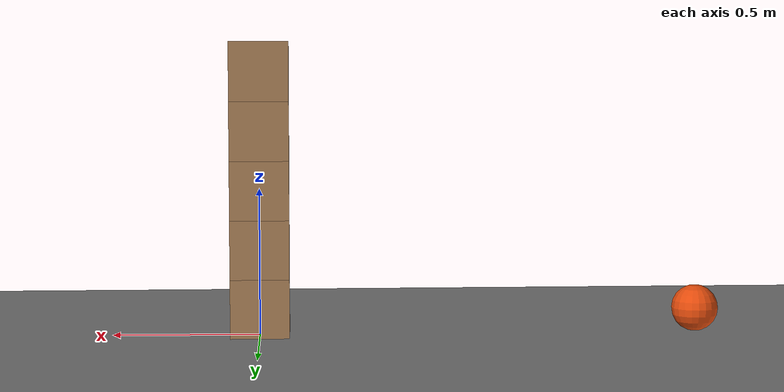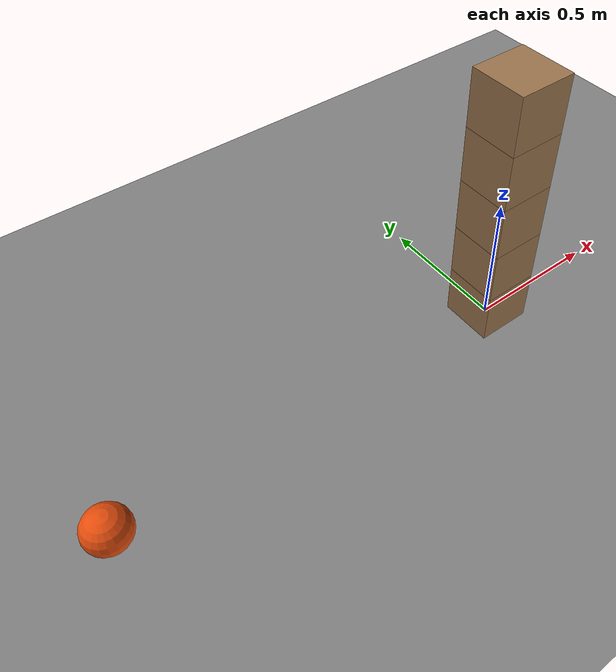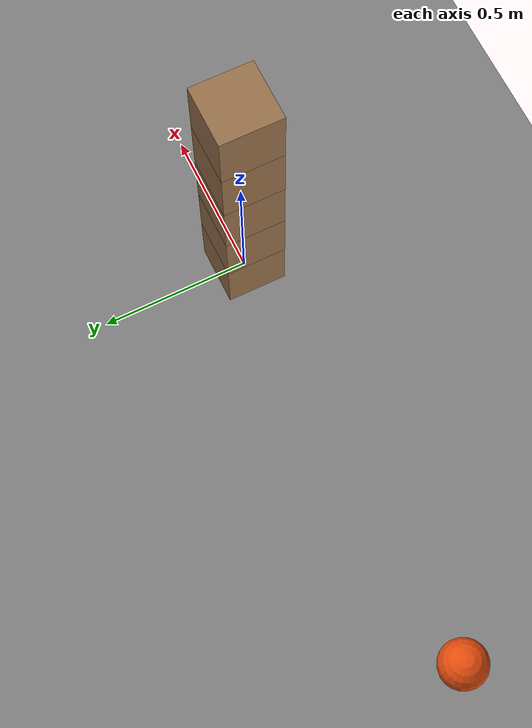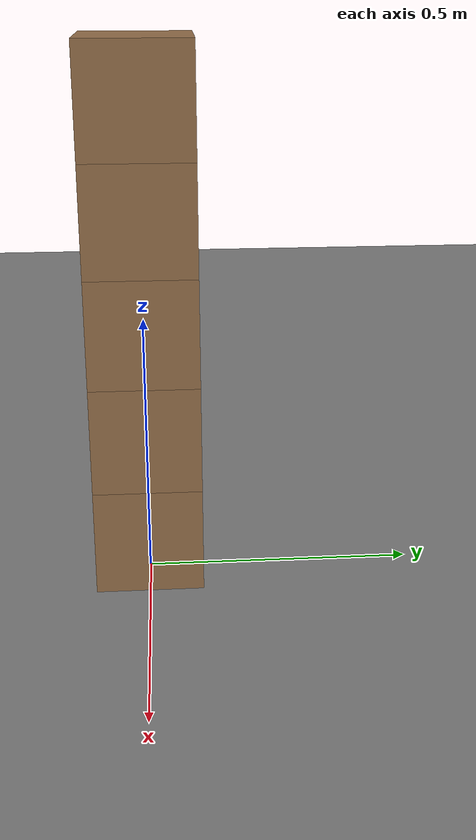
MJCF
<mujoco model="five_blocks_toppled_by_a_rolling_ball">
  <compiler angle="radian"/>
  <option timestep="0.002"/>
  <worldbody>
    <geom name="floor" type="plane" size="6 6 0.1" friction="0.8 0.005 0.002"/>
    <body name="block1" pos="0 0 0.1">
      <freejoint/>
      <geom name="block1" type="box" pos="0 0 0" size="0.1 0.1 0.1" mass="0.5" friction="0.7 0.005 0.002" solref="0.01 1" rgba="0.6 0.45 0.3 1"/>
    </body>
    <body name="block2" pos="0 0 0.3">
      <freejoint/>
      <geom name="block2" type="box" pos="0 0 0" size="0.1 0.1 0.1" mass="0.5" friction="0.7 0.005 0.002" solref="0.01 1" rgba="0.6 0.45 0.3 1"/>
    </body>
    <body name="block3" pos="0 0 0.5">
      <freejoint/>
      <geom name="block3" type="box" pos="0 0 0" size="0.1 0.1 0.1" mass="0.5" friction="0.7 0.005 0.002" solref="0.01 1" rgba="0.6 0.45 0.3 1"/>
    </body>
    <body name="block4" pos="0 0 0.7">
      <freejoint/>
      <geom name="block4" type="box" pos="0 0 0" size="0.1 0.1 0.1" mass="0.5" friction="0.7 0.005 0.002" solref="0.01 1" rgba="0.6 0.45 0.3 1"/>
    </body>
    <body name="block5" pos="0 0 0.9">
      <freejoint/>
      <geom name="block5" type="box" pos="0 0 0" size="0.1 0.1 0.1" mass="0.5" friction="0.7 0.005 0.002" solref="0.01 1" rgba="0.6 0.45 0.3 1"/>
    </body>
    <body name="pusher" pos="-1.5 0 0.08">
      <freejoint/>
      <geom name="pusher" type="sphere" pos="0 0 0" size="0.08" mass="3" condim="6" friction="0.8 0.001 0.0005" solref="0.01 1" rgba="0.9 0.3 0.05 1"/>
    </body>
  </worldbody>
  <keyframe>
    <key name="start" qpos="0 0 0.1 1 0 0 0 0 0 0.3 1 0 0 0 0 0 0.5 1 0 0 0 0 0 0.7 1 0 0 0 0 0 0.9 1 0 0 0 -1.5 0 0.08 1 0 0 0" qvel="0 0 0 0 0 0 0 0 0 0 0 0 0 0 0 0 0 0 0 0 0 0 0 0 0 0 0 0 0 0 2.4 0 0 0 30 0"/>
  </keyframe>
</mujoco>
